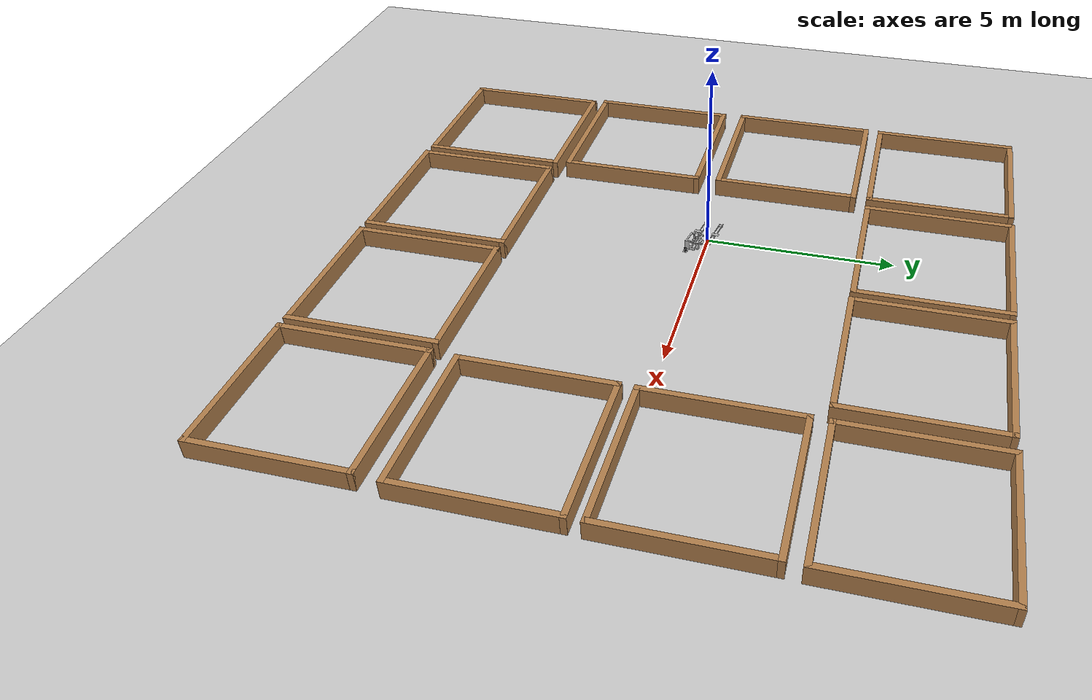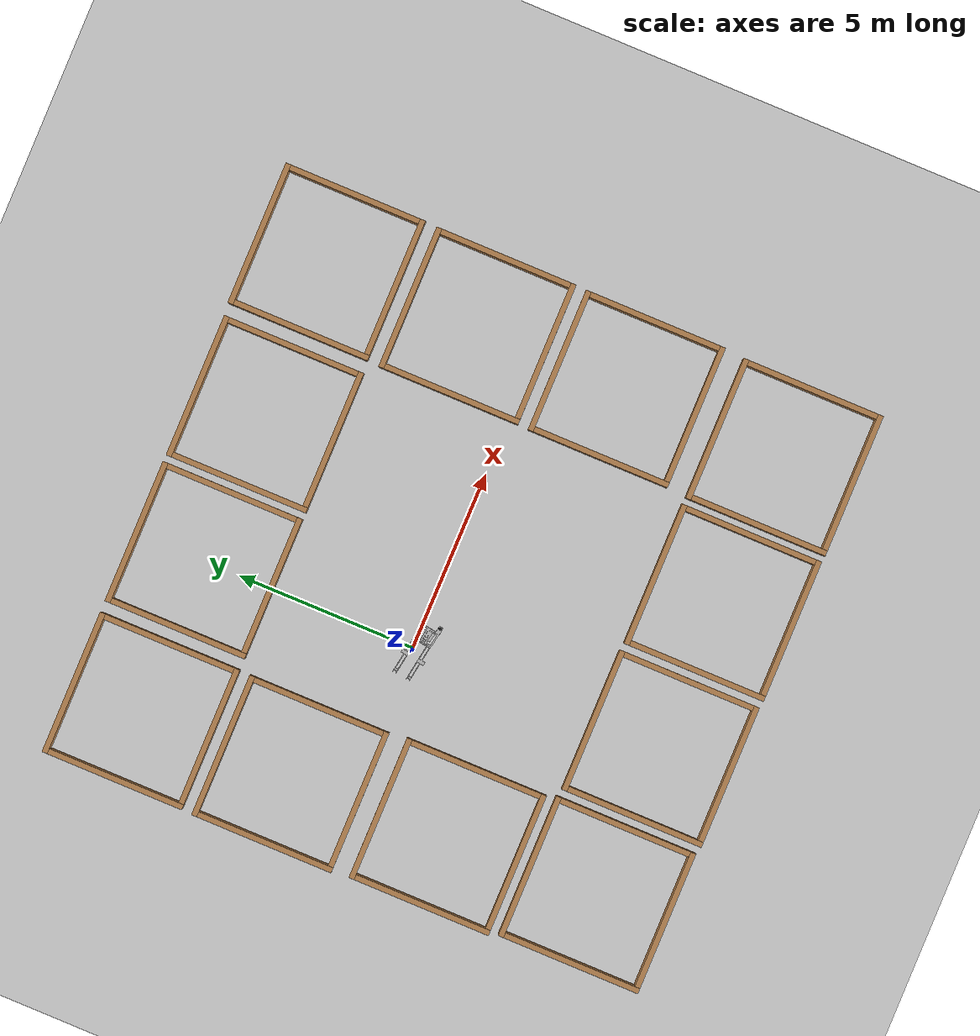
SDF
<sdf version="1.7">
 <world name="default">
  <light name="sun" type="directional">
   <pose>0 0 10 0 -0 0</pose>
   <diffuse>0.8 0.8 0.8 1</diffuse>
   <specular>0.2 0.2 0.2 1</specular>
   <attenuation>
    <range>1000</range>
    <constant>0.9</constant>
    <linear>0.01</linear>
    <quadratic>0.001</quadratic>
   </attenuation>
   <direction>-0.5 0.1 -0.9</direction>
   <spot><inner_angle>0</inner_angle><outer_angle>0</outer_angle><falloff>0</falloff></spot>
  </light>
  <model name="ground_plane">
   <static>1</static>
   <link name="link">
    <collision name="collision">
     <geometry><plane><normal>0 0 1</normal><size>100 100</size></plane></geometry>
     <surface><friction><ode><mu>100</mu><mu2>50</mu2></ode></friction></surface>
    </collision>
    <visual name="visual">
     <cast_shadows>0</cast_shadows>
     <geometry><plane><normal>0 0 1</normal><size>100 100</size></plane></geometry>
     <material>
      <script><uri>file://media/materials/scripts/gazebo.material</uri><name>Gazebo/Grey</name></script>
     </material>
    </visual>
   </link>
  </model>
  <gravity>0 0 -9.8</gravity>
  <magnetic_field>6e-06 2.3e-05 -4.2e-05</magnetic_field>
  <atmosphere type="adiabatic"/>
  <physics type="ode">
   <max_step_size>0.001</max_step_size>
   <real_time_factor>1</real_time_factor>
   <real_time_update_rate>1000</real_time_update_rate>
  </physics>
  <scene><ambient>0.4 0.4 0.4 1</ambient><background>0.7 0.7 0.7 1</background><shadows>1</shadows></scene>
  <spherical_coordinates>
   <surface_model>EARTH_WGS84</surface_model>
   <latitude_deg>0</latitude_deg>
   <longitude_deg>0</longitude_deg>
   <elevation>0</elevation>
   <heading_deg>0</heading_deg>
  </spherical_coordinates>
  <model name="gearfork_bot">
   <link name="base_footprint">
    <inertial>
     <pose>0.364933 -0.015221 0.223171 0 -0 0</pose>
     <mass>7.22673</mass>
     <inertia>
      <ixx>0.2612</ixx>
      <ixy>0.061618</ixy>
      <ixz>-0.177165</ixz>
      <iyy>0.994792</iyy>
      <iyz>-0.00749396</iyz>
      <izz>1.07132</izz>
     </inertia>
    </inertial>
    <collision name="base_footprint_collision">
     <geometry>
      <mesh>
       <scale>1 1 1</scale>
       <uri>/home/avinaash/noetic_ws/src/gearfork_bot/meshes/base_footprint.STL</uri>
      </mesh>
     </geometry>
    </collision>
    <collision name="base_footprint_fixed_joint_lump__base_link_collision_1">
     <pose>0 0 0.035 0 -0 0</pose>
     <geometry>
      <mesh><scale>1 1 1</scale><uri>/home/avinaash/noetic_ws/src/gearfork_bot/meshes/base_link.STL</uri></mesh>
     </geometry>
    </collision>
    <collision name="base_footprint_fixed_joint_lump__laser_link_collision_2">
     <pose>0.93 -0.22 0.181 0 -0 0</pose>
     <geometry>
      <mesh><scale>1 1 1</scale><uri>/home/avinaash/noetic_ws/src/gearfork_bot/meshes/laser_link.STL</uri></mesh>
     </geometry>
    </collision>
    <visual name="base_footprint_visual">
     <geometry>
      <mesh>
       <scale>1 1 1</scale>
       <uri>/home/avinaash/noetic_ws/src/gearfork_bot/meshes/base_footprint.STL</uri>
      </mesh>
     </geometry>
    </visual>
    <visual name="base_footprint_fixed_joint_lump__base_link_visual_1">
     <pose>0 0 0.035 0 -0 0</pose>
     <geometry>
      <mesh><scale>1 1 1</scale><uri>/home/avinaash/noetic_ws/src/gearfork_bot/meshes/base_link.STL</uri></mesh>
     </geometry>
    </visual>
    <visual name="base_footprint_fixed_joint_lump__laser_link_visual_2">
     <pose>0.93 -0.22 0.181 0 -0 0</pose>
     <geometry>
      <mesh><scale>1 1 1</scale><uri>/home/avinaash/noetic_ws/src/gearfork_bot/meshes/laser_link.STL</uri></mesh>
     </geometry>
     <material>
      <script><name>Gazebo/FlatBlack</name><uri>file://media/materials/scripts/gazebo.material</uri></script>
     </material>
    </visual>
    <sensor name="lds_lfcd_sensor" type="ray">
     <visualize>1</visualize>
     <update_rate>5</update_rate>
     <ray>
      <scan>
       <horizontal>
        <samples>760</samples>
        <resolution>1</resolution>
        <min_angle>-2.2</min_angle>
        <max_angle>1.57</max_angle>
       </horizontal>
       <vertical><samples>1</samples><min_angle>0</min_angle><max_angle>0</max_angle></vertical>
      </scan>
      <range><min>0.12</min><max>3.5</max><resolution>0.015</resolution></range>
      <noise><type>gaussian</type><mean>0</mean><stddev>0.01</stddev></noise>
     </ray>
     <plugin name="gazebo_ros_lds_lfcd_controller" filename="libgazebo_ros_laser.so">
      <topicName>/scan</topicName>
      <frameName>laser_link</frameName>
      <robotNamespace>/</robotNamespace>
     </plugin>
     <pose>0.93 -0.22 0.181 0 -0 0</pose>
    </sensor>
   </link>
   <joint name="lroller_joint" type="revolute">
    <pose relative_to="base_footprint">-0.6 0.17 0.045 0 -0 0</pose>
    <parent>base_footprint</parent>
    <child>lroller_link</child>
    <axis>
     <xyz>0 1 0</xyz>
     <limit><lower>-1e+16</lower><upper>1e+16</upper></limit>
     <dynamics>
      <damping>0</damping>
      <friction>0.1</friction>
      <spring_reference>0</spring_reference>
      <spring_stiffness>0</spring_stiffness>
     </dynamics>
    </axis>
   </joint>
   <link name="lroller_link">
    <pose relative_to="lroller_joint">0 0 0 0 -0 0</pose>
    <inertial>
     <pose>0 0.045 0 0 -0 0</pose>
     <mass>0.31285</mass>
     <inertia>
      <ixx>0.000307325</ixx>
      <ixy>8.78477e-20</ixy>
      <ixz>-2.3574e-20</ixz>
      <iyy>0.000204893</iyy>
      <iyz>2.69663e-19</iyz>
      <izz>0.000307325</izz>
     </inertia>
    </inertial>
    <collision name="lroller_link_collision">
     <geometry>
      <mesh><scale>1 1 1</scale><uri>/home/avinaash/noetic_ws/src/gearfork_bot/meshes/lroller_link.STL</uri></mesh>
     </geometry>
    </collision>
    <visual name="lroller_link_visual">
     <geometry>
      <mesh><scale>1 1 1</scale><uri>/home/avinaash/noetic_ws/src/gearfork_bot/meshes/lroller_link.STL</uri></mesh>
     </geometry>
    </visual>
   </link>
   <joint name="motor_joint" type="revolute">
    <pose relative_to="base_footprint">0.6 0 0.322 0 -0 0</pose>
    <parent>base_footprint</parent>
    <child>motor_link</child>
    <axis>
     <xyz>0 0 -1</xyz>
     <limit><lower>-0.88</lower><upper>0.88</upper><effort>5</effort><velocity>1</velocity></limit>
     <dynamics><spring_reference>0</spring_reference><spring_stiffness>0</spring_stiffness></dynamics>
    </axis>
   </joint>
   <link name="motor_link">
    <pose relative_to="motor_joint">0 0 0 0 -0 0</pose>
    <inertial>
     <pose>0.030545 -0.051619 -0.152664 0 -0 0</pose>
     <mass>3.6295</mass>
     <inertia>
      <ixx>0.0208732</ixx>
      <ixy>0.00122763</ixy>
      <ixz>8.16486e-06</ixz>
      <iyy>0.0180104</iyy>
      <iyz>-0.0033588</iyz>
      <izz>0.024987</izz>
     </inertia>
    </inertial>
    <collision name="motor_link_collision">
     <geometry>
      <mesh><scale>1 1 1</scale><uri>/home/avinaash/noetic_ws/src/gearfork_bot/meshes/motor_link.STL</uri></mesh>
     </geometry>
    </collision>
    <visual name="motor_link_visual">
     <geometry>
      <mesh><scale>1 1 1</scale><uri>/home/avinaash/noetic_ws/src/gearfork_bot/meshes/motor_link.STL</uri></mesh>
     </geometry>
    </visual>
   </link>
   <joint name="wheel_joint" type="revolute">
    <pose relative_to="motor_link">0.004014 0.033026 -0.247 0 -0 0</pose>
    <parent>motor_link</parent>
    <child>wheel_link</child>
    <axis>
     <xyz>0.006265 0.99998 0</xyz>
     <limit><lower>-1e+16</lower><upper>1e+16</upper></limit>
     <dynamics><spring_reference>0</spring_reference><spring_stiffness>0</spring_stiffness></dynamics>
    </axis>
   </joint>
   <link name="wheel_link">
    <pose relative_to="wheel_joint">0 0 0 0 -0 0</pose>
    <inertial>
     <pose>0.000172 -0.02745 0 0 -0 0</pose>
     <mass>0.919701</mass>
     <inertia>
      <ixx>0.00158997</ixx>
      <ixy>-5.62419e-06</ixy>
      <ixz>-6.63957e-20</ixz>
      <iyy>0.0024877</iyy>
      <iyz>1.16271e-19</iyz>
      <izz>0.00158993</izz>
     </inertia>
    </inertial>
    <collision name="wheel_link_collision">
     <geometry>
      <mesh><scale>1 1 1</scale><uri>/home/avinaash/noetic_ws/src/gearfork_bot/meshes/wheel_link.STL</uri></mesh>
     </geometry>
    </collision>
    <visual name="wheel_link_visual">
     <geometry>
      <mesh><scale>1 1 1</scale><uri>/home/avinaash/noetic_ws/src/gearfork_bot/meshes/wheel_link.STL</uri></mesh>
     </geometry>
    </visual>
   </link>
   <joint name="rroller_joint" type="revolute">
    <pose relative_to="base_footprint">-0.6 -0.17 0.045 0 -0 0</pose>
    <parent>base_footprint</parent>
    <child>rroller_link</child>
    <axis>
     <xyz>0 1 0</xyz>
     <limit><lower>-1e+16</lower><upper>1e+16</upper></limit>
     <dynamics>
      <damping>0</damping>
      <friction>0.1</friction>
      <spring_reference>0</spring_reference>
      <spring_stiffness>0</spring_stiffness>
     </dynamics>
    </axis>
   </joint>
   <link name="rroller_link">
    <pose relative_to="rroller_joint">0 0 0 0 -0 0</pose>
    <inertial>
     <pose>0 -0.045 0 0 -0 0</pose>
     <mass>0.31285</mass>
     <inertia>
      <ixx>0.000307325</ixx>
      <ixy>3.35272e-19</ixy>
      <ixz>-8.68654e-21</ixz>
      <iyy>0.000204893</iyy>
      <iyz>4.43634e-20</iyz>
      <izz>0.000307325</izz>
     </inertia>
    </inertial>
    <collision name="rroller_link_collision">
     <geometry>
      <mesh><scale>1 1 1</scale><uri>/home/avinaash/noetic_ws/src/gearfork_bot/meshes/rroller_link.STL</uri></mesh>
     </geometry>
    </collision>
    <visual name="rroller_link_visual">
     <geometry>
      <mesh><scale>1 1 1</scale><uri>/home/avinaash/noetic_ws/src/gearfork_bot/meshes/rroller_link.STL</uri></mesh>
     </geometry>
    </visual>
   </link>
   <joint name="steering_joint" type="revolute">
    <pose relative_to="base_footprint">0.74937 0 0.267 0 -0 0</pose>
    <parent>base_footprint</parent>
    <child>steering_link</child>
    <axis>
     <xyz>0 0 1</xyz>
     <limit><lower>-1e+16</lower><upper>1e+16</upper></limit>
     <dynamics><spring_reference>0</spring_reference><spring_stiffness>0</spring_stiffness></dynamics>
    </axis>
   </joint>
   <link name="steering_link">
    <pose relative_to="steering_joint">0 0 0 0 -0 0</pose>
    <inertial>
     <pose>0 0 0.070853 0 -0 0</pose>
     <mass>0.100938</mass>
     <inertia>
      <ixx>0.000449053</ixx>
      <ixy>-1.89272e-20</ixy>
      <ixz>6.21936e-20</ixz>
      <iyy>0.000449053</iyy>
      <iyz>-1.60008e-19</iyz>
      <izz>1.73496e-05</izz>
     </inertia>
    </inertial>
    <collision name="steering_link_collision">
     <geometry>
      <mesh><scale>1 1 1</scale><uri>/home/avinaash/noetic_ws/src/gearfork_bot/meshes/steering_link.STL</uri></mesh>
     </geometry>
    </collision>
    <visual name="steering_link_visual">
     <geometry>
      <mesh><scale>1 1 1</scale><uri>/home/avinaash/noetic_ws/src/gearfork_bot/meshes/steering_link.STL</uri></mesh>
     </geometry>
    </visual>
   </link>
   <plugin name="gazebo_ros_control" filename="libgazebo_ros_control.so">
    <robotNamespace>/gearfork_bot</robotNamespace>
   </plugin>
   <plugin name="differential_drive_controller" filename="libgazebo_ros_diff_drive.so">
    <updateRate>10</updateRate>
    <leftJoint>wheel_joint</leftJoint>
    <rightJoint>wheel_joint</rightJoint>
    <wheelSeparation>0.5380</wheelSeparation>
    <wheelDiameter>0.2410</wheelDiameter>
    <wheelAcceleration>1.0</wheelAcceleration>
    <wheelTorque>10</wheelTorque>
    <commandTopic>/gearfork_bot/cmd_vel</commandTopic>
    <odometryTopic>odom</odometryTopic>
    <odometryFrame>odom</odometryFrame>
    <robotBaseFrame>base_link</robotBaseFrame>
    <odometrySource>1</odometrySource>
    <publishWheelTF>0</publishWheelTF>
    <publishOdom>1</publishOdom>
    <publishWheelJointState>0</publishWheelJointState>
    <legacyMode>0</legacyMode>
    <robotNamespace>/</robotNamespace>
   </plugin>
   <frame name="laser_joint" attached_to="base_link"><pose>0.93 -0.22 0.146 0 -0 0</pose></frame>
   <frame name="laser_link" attached_to="laser_joint"/>
   <frame name="base_joint" attached_to="base_footprint"><pose>0 0 0.035 0 -0 0</pose></frame>
   <frame name="base_link" attached_to="base_joint"/>
   <pose>-0.13187 -0.091387 3.7e-05 0.037455 -0.000928 -0.162586</pose>
  </model>
  <model name="turtlebot3_square">
   <pose>0.029475 6.01089 0 0 -0 0</pose>
   <link name="Wall_0">
    <collision name="Wall_0_Collision">
     <geometry><box><size>4 0.15 0.5</size></box></geometry>
     <pose>0 0 0.25 0 -0 0</pose>
    </collision>
    <visual name="Wall_0_Visual">
     <pose>0 0 0.25 0 -0 0</pose>
     <geometry><box><size>4 0.15 0.5</size></box></geometry>
     <material>
      <script><uri>file://media/materials/scripts/gazebo.material</uri><name>Gazebo/Wood</name></script>
      <ambient>1 1 1 1</ambient>
     </material>
    </visual>
    <pose>0 1.925 0 0 -0 0</pose>
   </link>
   <link name="Wall_2">
    <collision name="Wall_2_Collision">
     <geometry><box><size>4 0.15 0.5</size></box></geometry>
     <pose>0 0 0.25 0 -0 0</pose>
    </collision>
    <visual name="Wall_2_Visual">
     <pose>0 0 0.25 0 -0 0</pose>
     <geometry><box><size>4 0.15 0.5</size></box></geometry>
     <material>
      <script><uri>file://media/materials/scripts/gazebo.material</uri><name>Gazebo/Wood</name></script>
      <ambient>1 1 1 1</ambient>
     </material>
    </visual>
    <pose>-1.925 0 0 0 0 -1.5708</pose>
   </link>
   <link name="Wall_3">
    <collision name="Wall_3_Collision">
     <geometry><box><size>4 0.15 0.5</size></box></geometry>
     <pose>0 0 0.25 0 -0 0</pose>
    </collision>
    <visual name="Wall_3_Visual">
     <pose>0 0 0.25 0 -0 0</pose>
     <geometry><box><size>4 0.15 0.5</size></box></geometry>
     <material>
      <script><uri>file://media/materials/scripts/gazebo.material</uri><name>Gazebo/Wood</name></script>
      <ambient>1 1 1 1</ambient>
     </material>
    </visual>
    <pose>0 -1.925 0 0 -0 0</pose>
   </link>
   <link name="Wall_4">
    <collision name="Wall_4_Collision">
     <geometry><box><size>4 0.15 0.5</size></box></geometry>
     <pose>0 0 0.25 0 -0 0</pose>
    </collision>
    <visual name="Wall_4_Visual">
     <pose>0 0 0.25 0 -0 0</pose>
     <geometry><box><size>4 0.15 0.5</size></box></geometry>
     <material>
      <script><uri>file://media/materials/scripts/gazebo.material</uri><name>Gazebo/Wood</name></script>
      <ambient>1 1 1 1</ambient>
     </material>
    </visual>
    <pose>1.925 0 0 0 -0 1.5708</pose>
   </link>
   <static>1</static>
  </model>
  <model name="turtlebot3_square_0">
   <pose>0.084812 -7.05587 0 0 -0 0</pose>
   <link name="Wall_0">
    <collision name="Wall_0_Collision">
     <geometry><box><size>4 0.15 0.5</size></box></geometry>
     <pose>0 0 0.25 0 -0 0</pose>
    </collision>
    <visual name="Wall_0_Visual">
     <pose>0 0 0.25 0 -0 0</pose>
     <geometry><box><size>4 0.15 0.5</size></box></geometry>
     <material>
      <script><uri>file://media/materials/scripts/gazebo.material</uri><name>Gazebo/Wood</name></script>
      <ambient>1 1 1 1</ambient>
     </material>
    </visual>
    <pose>0 1.925 0 0 -0 0</pose>
   </link>
   <link name="Wall_2">
    <collision name="Wall_2_Collision">
     <geometry><box><size>4 0.15 0.5</size></box></geometry>
     <pose>0 0 0.25 0 -0 0</pose>
    </collision>
    <visual name="Wall_2_Visual">
     <pose>0 0 0.25 0 -0 0</pose>
     <geometry><box><size>4 0.15 0.5</size></box></geometry>
     <material>
      <script><uri>file://media/materials/scripts/gazebo.material</uri><name>Gazebo/Wood</name></script>
      <ambient>1 1 1 1</ambient>
     </material>
    </visual>
    <pose>-1.925 0 0 0 0 -1.5708</pose>
   </link>
   <link name="Wall_3">
    <collision name="Wall_3_Collision">
     <geometry><box><size>4 0.15 0.5</size></box></geometry>
     <pose>0 0 0.25 0 -0 0</pose>
    </collision>
    <visual name="Wall_3_Visual">
     <pose>0 0 0.25 0 -0 0</pose>
     <geometry><box><size>4 0.15 0.5</size></box></geometry>
     <material>
      <script><uri>file://media/materials/scripts/gazebo.material</uri><name>Gazebo/Wood</name></script>
      <ambient>1 1 1 1</ambient>
     </material>
    </visual>
    <pose>0 -1.925 0 0 -0 0</pose>
   </link>
   <link name="Wall_4">
    <collision name="Wall_4_Collision">
     <geometry><box><size>4 0.15 0.5</size></box></geometry>
     <pose>0 0 0.25 0 -0 0</pose>
    </collision>
    <visual name="Wall_4_Visual">
     <pose>0 0 0.25 0 -0 0</pose>
     <geometry><box><size>4 0.15 0.5</size></box></geometry>
     <material>
      <script><uri>file://media/materials/scripts/gazebo.material</uri><name>Gazebo/Wood</name></script>
      <ambient>1 1 1 1</ambient>
     </material>
    </visual>
    <pose>1.925 0 0 0 -0 1.5708</pose>
   </link>
   <static>1</static>
  </model>
  <model name="turtlebot3_square_1">
   <pose>4.21174 5.99983 0 0 -0 0</pose>
   <link name="Wall_0">
    <collision name="Wall_0_Collision">
     <geometry><box><size>4 0.15 0.5</size></box></geometry>
     <pose>0 0 0.25 0 -0 0</pose>
    </collision>
    <visual name="Wall_0_Visual">
     <pose>0 0 0.25 0 -0 0</pose>
     <geometry><box><size>4 0.15 0.5</size></box></geometry>
     <material>
      <script><uri>file://media/materials/scripts/gazebo.material</uri><name>Gazebo/Wood</name></script>
      <ambient>1 1 1 1</ambient>
     </material>
    </visual>
    <pose>0 1.925 0 0 -0 0</pose>
   </link>
   <link name="Wall_2">
    <collision name="Wall_2_Collision">
     <geometry><box><size>4 0.15 0.5</size></box></geometry>
     <pose>0 0 0.25 0 -0 0</pose>
    </collision>
    <visual name="Wall_2_Visual">
     <pose>0 0 0.25 0 -0 0</pose>
     <geometry><box><size>4 0.15 0.5</size></box></geometry>
     <material>
      <script><uri>file://media/materials/scripts/gazebo.material</uri><name>Gazebo/Wood</name></script>
      <ambient>1 1 1 1</ambient>
     </material>
    </visual>
    <pose>-1.925 0 0 0 0 -1.5708</pose>
   </link>
   <link name="Wall_3">
    <collision name="Wall_3_Collision">
     <geometry><box><size>4 0.15 0.5</size></box></geometry>
     <pose>0 0 0.25 0 -0 0</pose>
    </collision>
    <visual name="Wall_3_Visual">
     <pose>0 0 0.25 0 -0 0</pose>
     <geometry><box><size>4 0.15 0.5</size></box></geometry>
     <material>
      <script><uri>file://media/materials/scripts/gazebo.material</uri><name>Gazebo/Wood</name></script>
      <ambient>1 1 1 1</ambient>
     </material>
    </visual>
    <pose>0 -1.925 0 0 -0 0</pose>
   </link>
   <link name="Wall_4">
    <collision name="Wall_4_Collision">
     <geometry><box><size>4 0.15 0.5</size></box></geometry>
     <pose>0 0 0.25 0 -0 0</pose>
    </collision>
    <visual name="Wall_4_Visual">
     <pose>0 0 0.25 0 -0 0</pose>
     <geometry><box><size>4 0.15 0.5</size></box></geometry>
     <material>
      <script><uri>file://media/materials/scripts/gazebo.material</uri><name>Gazebo/Wood</name></script>
      <ambient>1 1 1 1</ambient>
     </material>
    </visual>
    <pose>1.925 0 0 0 -0 1.5708</pose>
   </link>
   <static>1</static>
  </model>
  <model name="turtlebot3_square_2">
   <pose>4.27813 -7.08907 0 0 -0 0</pose>
   <link name="Wall_0">
    <collision name="Wall_0_Collision">
     <geometry><box><size>4 0.15 0.5</size></box></geometry>
     <pose>0 0 0.25 0 -0 0</pose>
    </collision>
    <visual name="Wall_0_Visual">
     <pose>0 0 0.25 0 -0 0</pose>
     <geometry><box><size>4 0.15 0.5</size></box></geometry>
     <material>
      <script><uri>file://media/materials/scripts/gazebo.material</uri><name>Gazebo/Wood</name></script>
      <ambient>1 1 1 1</ambient>
     </material>
    </visual>
    <pose>0 1.925 0 0 -0 0</pose>
   </link>
   <link name="Wall_2">
    <collision name="Wall_2_Collision">
     <geometry><box><size>4 0.15 0.5</size></box></geometry>
     <pose>0 0 0.25 0 -0 0</pose>
    </collision>
    <visual name="Wall_2_Visual">
     <pose>0 0 0.25 0 -0 0</pose>
     <geometry><box><size>4 0.15 0.5</size></box></geometry>
     <material>
      <script><uri>file://media/materials/scripts/gazebo.material</uri><name>Gazebo/Wood</name></script>
      <ambient>1 1 1 1</ambient>
     </material>
    </visual>
    <pose>-1.925 0 0 0 0 -1.5708</pose>
   </link>
   <link name="Wall_3">
    <collision name="Wall_3_Collision">
     <geometry><box><size>4 0.15 0.5</size></box></geometry>
     <pose>0 0 0.25 0 -0 0</pose>
    </collision>
    <visual name="Wall_3_Visual">
     <pose>0 0 0.25 0 -0 0</pose>
     <geometry><box><size>4 0.15 0.5</size></box></geometry>
     <material>
      <script><uri>file://media/materials/scripts/gazebo.material</uri><name>Gazebo/Wood</name></script>
      <ambient>1 1 1 1</ambient>
     </material>
    </visual>
    <pose>0 -1.925 0 0 -0 0</pose>
   </link>
   <link name="Wall_4">
    <collision name="Wall_4_Collision">
     <geometry><box><size>4 0.15 0.5</size></box></geometry>
     <pose>0 0 0.25 0 -0 0</pose>
    </collision>
    <visual name="Wall_4_Visual">
     <pose>0 0 0.25 0 -0 0</pose>
     <geometry><box><size>4 0.15 0.5</size></box></geometry>
     <material>
      <script><uri>file://media/materials/scripts/gazebo.material</uri><name>Gazebo/Wood</name></script>
      <ambient>1 1 1 1</ambient>
     </material>
    </visual>
    <pose>1.925 0 0 0 -0 1.5708</pose>
   </link>
   <static>1</static>
  </model>
  <model name="turtlebot3_square_3">
   <pose>8.4555 -7.11386 0 0 -0 0</pose>
   <link name="Wall_0">
    <collision name="Wall_0_Collision">
     <geometry><box><size>4 0.15 0.5</size></box></geometry>
     <pose>0 0 0.25 0 -0 0</pose>
    </collision>
    <visual name="Wall_0_Visual">
     <pose>0 0 0.25 0 -0 0</pose>
     <geometry><box><size>4 0.15 0.5</size></box></geometry>
     <material>
      <script><uri>file://media/materials/scripts/gazebo.material</uri><name>Gazebo/Wood</name></script>
      <ambient>1 1 1 1</ambient>
     </material>
    </visual>
    <pose>0 1.925 0 0 -0 0</pose>
   </link>
   <link name="Wall_2">
    <collision name="Wall_2_Collision">
     <geometry><box><size>4 0.15 0.5</size></box></geometry>
     <pose>0 0 0.25 0 -0 0</pose>
    </collision>
    <visual name="Wall_2_Visual">
     <pose>0 0 0.25 0 -0 0</pose>
     <geometry><box><size>4 0.15 0.5</size></box></geometry>
     <material>
      <script><uri>file://media/materials/scripts/gazebo.material</uri><name>Gazebo/Wood</name></script>
      <ambient>1 1 1 1</ambient>
     </material>
    </visual>
    <pose>-1.925 0 0 0 0 -1.5708</pose>
   </link>
   <link name="Wall_3">
    <collision name="Wall_3_Collision">
     <geometry><box><size>4 0.15 0.5</size></box></geometry>
     <pose>0 0 0.25 0 -0 0</pose>
    </collision>
    <visual name="Wall_3_Visual">
     <pose>0 0 0.25 0 -0 0</pose>
     <geometry><box><size>4 0.15 0.5</size></box></geometry>
     <material>
      <script><uri>file://media/materials/scripts/gazebo.material</uri><name>Gazebo/Wood</name></script>
      <ambient>1 1 1 1</ambient>
     </material>
    </visual>
    <pose>0 -1.925 0 0 -0 0</pose>
   </link>
   <link name="Wall_4">
    <collision name="Wall_4_Collision">
     <geometry><box><size>4 0.15 0.5</size></box></geometry>
     <pose>0 0 0.25 0 -0 0</pose>
    </collision>
    <visual name="Wall_4_Visual">
     <pose>0 0 0.25 0 -0 0</pose>
     <geometry><box><size>4 0.15 0.5</size></box></geometry>
     <material>
      <script><uri>file://media/materials/scripts/gazebo.material</uri><name>Gazebo/Wood</name></script>
      <ambient>1 1 1 1</ambient>
     </material>
    </visual>
    <pose>1.925 0 0 0 -0 1.5708</pose>
   </link>
   <static>1</static>
  </model>
  <model name="turtlebot3_square_4">
   <pose>8.55544 6.04772 0 0 -0 0</pose>
   <link name="Wall_0">
    <collision name="Wall_0_Collision">
     <geometry><box><size>4 0.15 0.5</size></box></geometry>
     <pose>0 0 0.25 0 -0 0</pose>
    </collision>
    <visual name="Wall_0_Visual">
     <pose>0 0 0.25 0 -0 0</pose>
     <geometry><box><size>4 0.15 0.5</size></box></geometry>
     <material>
      <script><uri>file://media/materials/scripts/gazebo.material</uri><name>Gazebo/Wood</name></script>
      <ambient>1 1 1 1</ambient>
     </material>
    </visual>
    <pose>0 1.925 0 0 -0 0</pose>
   </link>
   <link name="Wall_2">
    <collision name="Wall_2_Collision">
     <geometry><box><size>4 0.15 0.5</size></box></geometry>
     <pose>0 0 0.25 0 -0 0</pose>
    </collision>
    <visual name="Wall_2_Visual">
     <pose>0 0 0.25 0 -0 0</pose>
     <geometry><box><size>4 0.15 0.5</size></box></geometry>
     <material>
      <script><uri>file://media/materials/scripts/gazebo.material</uri><name>Gazebo/Wood</name></script>
      <ambient>1 1 1 1</ambient>
     </material>
    </visual>
    <pose>-1.925 0 0 0 0 -1.5708</pose>
   </link>
   <link name="Wall_3">
    <collision name="Wall_3_Collision">
     <geometry><box><size>4 0.15 0.5</size></box></geometry>
     <pose>0 0 0.25 0 -0 0</pose>
    </collision>
    <visual name="Wall_3_Visual">
     <pose>0 0 0.25 0 -0 0</pose>
     <geometry><box><size>4 0.15 0.5</size></box></geometry>
     <material>
      <script><uri>file://media/materials/scripts/gazebo.material</uri><name>Gazebo/Wood</name></script>
      <ambient>1 1 1 1</ambient>
     </material>
    </visual>
    <pose>0 -1.925 0 0 -0 0</pose>
   </link>
   <link name="Wall_4">
    <collision name="Wall_4_Collision">
     <geometry><box><size>4 0.15 0.5</size></box></geometry>
     <pose>0 0 0.25 0 -0 0</pose>
    </collision>
    <visual name="Wall_4_Visual">
     <pose>0 0 0.25 0 -0 0</pose>
     <geometry><box><size>4 0.15 0.5</size></box></geometry>
     <material>
      <script><uri>file://media/materials/scripts/gazebo.material</uri><name>Gazebo/Wood</name></script>
      <ambient>1 1 1 1</ambient>
     </material>
    </visual>
    <pose>1.925 0 0 0 -0 1.5708</pose>
   </link>
   <static>1</static>
  </model>
  <model name="turtlebot3_square_5">
   <pose>-4.28557 6.0077 0 0 -0 0</pose>
   <link name="Wall_0">
    <collision name="Wall_0_Collision">
     <geometry><box><size>4 0.15 0.5</size></box></geometry>
     <pose>0 0 0.25 0 -0 0</pose>
    </collision>
    <visual name="Wall_0_Visual">
     <pose>0 0 0.25 0 -0 0</pose>
     <geometry><box><size>4 0.15 0.5</size></box></geometry>
     <material>
      <script><uri>file://media/materials/scripts/gazebo.material</uri><name>Gazebo/Wood</name></script>
      <ambient>1 1 1 1</ambient>
     </material>
    </visual>
    <pose>0 1.925 0 0 -0 0</pose>
   </link>
   <link name="Wall_2">
    <collision name="Wall_2_Collision">
     <geometry><box><size>4 0.15 0.5</size></box></geometry>
     <pose>0 0 0.25 0 -0 0</pose>
    </collision>
    <visual name="Wall_2_Visual">
     <pose>0 0 0.25 0 -0 0</pose>
     <geometry><box><size>4 0.15 0.5</size></box></geometry>
     <material>
      <script><uri>file://media/materials/scripts/gazebo.material</uri><name>Gazebo/Wood</name></script>
      <ambient>1 1 1 1</ambient>
     </material>
    </visual>
    <pose>-1.925 0 0 0 0 -1.5708</pose>
   </link>
   <link name="Wall_3">
    <collision name="Wall_3_Collision">
     <geometry><box><size>4 0.15 0.5</size></box></geometry>
     <pose>0 0 0.25 0 -0 0</pose>
    </collision>
    <visual name="Wall_3_Visual">
     <pose>0 0 0.25 0 -0 0</pose>
     <geometry><box><size>4 0.15 0.5</size></box></geometry>
     <material>
      <script><uri>file://media/materials/scripts/gazebo.material</uri><name>Gazebo/Wood</name></script>
      <ambient>1 1 1 1</ambient>
     </material>
    </visual>
    <pose>0 -1.925 0 0 -0 0</pose>
   </link>
   <link name="Wall_4">
    <collision name="Wall_4_Collision">
     <geometry><box><size>4 0.15 0.5</size></box></geometry>
     <pose>0 0 0.25 0 -0 0</pose>
    </collision>
    <visual name="Wall_4_Visual">
     <pose>0 0 0.25 0 -0 0</pose>
     <geometry><box><size>4 0.15 0.5</size></box></geometry>
     <material>
      <script><uri>file://media/materials/scripts/gazebo.material</uri><name>Gazebo/Wood</name></script>
      <ambient>1 1 1 1</ambient>
     </material>
    </visual>
    <pose>1.925 0 0 0 -0 1.5708</pose>
   </link>
   <static>1</static>
  </model>
  <model name="turtlebot3_square_6">
   <pose>-4.12515 -6.99359 0 0 -0 0</pose>
   <link name="Wall_0">
    <collision name="Wall_0_Collision">
     <geometry><box><size>4 0.15 0.5</size></box></geometry>
     <pose>0 0 0.25 0 -0 0</pose>
    </collision>
    <visual name="Wall_0_Visual">
     <pose>0 0 0.25 0 -0 0</pose>
     <geometry><box><size>4 0.15 0.5</size></box></geometry>
     <material>
      <script><uri>file://media/materials/scripts/gazebo.material</uri><name>Gazebo/Wood</name></script>
      <ambient>1 1 1 1</ambient>
     </material>
    </visual>
    <pose>0 1.925 0 0 -0 0</pose>
   </link>
   <link name="Wall_2">
    <collision name="Wall_2_Collision">
     <geometry><box><size>4 0.15 0.5</size></box></geometry>
     <pose>0 0 0.25 0 -0 0</pose>
    </collision>
    <visual name="Wall_2_Visual">
     <pose>0 0 0.25 0 -0 0</pose>
     <geometry><box><size>4 0.15 0.5</size></box></geometry>
     <material>
      <script><uri>file://media/materials/scripts/gazebo.material</uri><name>Gazebo/Wood</name></script>
      <ambient>1 1 1 1</ambient>
     </material>
    </visual>
    <pose>-1.925 0 0 0 0 -1.5708</pose>
   </link>
   <link name="Wall_3">
    <collision name="Wall_3_Collision">
     <geometry><box><size>4 0.15 0.5</size></box></geometry>
     <pose>0 0 0.25 0 -0 0</pose>
    </collision>
    <visual name="Wall_3_Visual">
     <pose>0 0 0.25 0 -0 0</pose>
     <geometry><box><size>4 0.15 0.5</size></box></geometry>
     <material>
      <script><uri>file://media/materials/scripts/gazebo.material</uri><name>Gazebo/Wood</name></script>
      <ambient>1 1 1 1</ambient>
     </material>
    </visual>
    <pose>0 -1.925 0 0 -0 0</pose>
   </link>
   <link name="Wall_4">
    <collision name="Wall_4_Collision">
     <geometry><box><size>4 0.15 0.5</size></box></geometry>
     <pose>0 0 0.25 0 -0 0</pose>
    </collision>
    <visual name="Wall_4_Visual">
     <pose>0 0 0.25 0 -0 0</pose>
     <geometry><box><size>4 0.15 0.5</size></box></geometry>
     <material>
      <script><uri>file://media/materials/scripts/gazebo.material</uri><name>Gazebo/Wood</name></script>
      <ambient>1 1 1 1</ambient>
     </material>
    </visual>
    <pose>1.925 0 0 0 -0 1.5708</pose>
   </link>
   <static>1</static>
  </model>
  <model name="turtlebot3_square_7">
   <pose>-4.30183 1.71776 0 0 -0 0</pose>
   <link name="Wall_0">
    <collision name="Wall_0_Collision">
     <geometry><box><size>4 0.15 0.5</size></box></geometry>
     <pose>0 0 0.25 0 -0 0</pose>
    </collision>
    <visual name="Wall_0_Visual">
     <pose>0 0 0.25 0 -0 0</pose>
     <geometry><box><size>4 0.15 0.5</size></box></geometry>
     <material>
      <script><uri>file://media/materials/scripts/gazebo.material</uri><name>Gazebo/Wood</name></script>
      <ambient>1 1 1 1</ambient>
     </material>
    </visual>
    <pose>0 1.925 0 0 -0 0</pose>
   </link>
   <link name="Wall_2">
    <collision name="Wall_2_Collision">
     <geometry><box><size>4 0.15 0.5</size></box></geometry>
     <pose>0 0 0.25 0 -0 0</pose>
    </collision>
    <visual name="Wall_2_Visual">
     <pose>0 0 0.25 0 -0 0</pose>
     <geometry><box><size>4 0.15 0.5</size></box></geometry>
     <material>
      <script><uri>file://media/materials/scripts/gazebo.material</uri><name>Gazebo/Wood</name></script>
      <ambient>1 1 1 1</ambient>
     </material>
    </visual>
    <pose>-1.925 0 0 0 0 -1.5708</pose>
   </link>
   <link name="Wall_3">
    <collision name="Wall_3_Collision">
     <geometry><box><size>4 0.15 0.5</size></box></geometry>
     <pose>0 0 0.25 0 -0 0</pose>
    </collision>
    <visual name="Wall_3_Visual">
     <pose>0 0 0.25 0 -0 0</pose>
     <geometry><box><size>4 0.15 0.5</size></box></geometry>
     <material>
      <script><uri>file://media/materials/scripts/gazebo.material</uri><name>Gazebo/Wood</name></script>
      <ambient>1 1 1 1</ambient>
     </material>
    </visual>
    <pose>0 -1.925 0 0 -0 0</pose>
   </link>
   <link name="Wall_4">
    <collision name="Wall_4_Collision">
     <geometry><box><size>4 0.15 0.5</size></box></geometry>
     <pose>0 0 0.25 0 -0 0</pose>
    </collision>
    <visual name="Wall_4_Visual">
     <pose>0 0 0.25 0 -0 0</pose>
     <geometry><box><size>4 0.15 0.5</size></box></geometry>
     <material>
      <script><uri>file://media/materials/scripts/gazebo.material</uri><name>Gazebo/Wood</name></script>
      <ambient>1 1 1 1</ambient>
     </material>
    </visual>
    <pose>1.925 0 0 0 -0 1.5708</pose>
   </link>
   <static>1</static>
  </model>
  <model name="turtlebot3_square_8">
   <pose>-4.23054 -2.75863 0 0 -0 0</pose>
   <link name="Wall_0">
    <collision name="Wall_0_Collision">
     <geometry><box><size>4 0.15 0.5</size></box></geometry>
     <pose>0 0 0.25 0 -0 0</pose>
    </collision>
    <visual name="Wall_0_Visual">
     <pose>0 0 0.25 0 -0 0</pose>
     <geometry><box><size>4 0.15 0.5</size></box></geometry>
     <material>
      <script><uri>file://media/materials/scripts/gazebo.material</uri><name>Gazebo/Wood</name></script>
      <ambient>1 1 1 1</ambient>
     </material>
    </visual>
    <pose>0 1.925 0 0 -0 0</pose>
   </link>
   <link name="Wall_2">
    <collision name="Wall_2_Collision">
     <geometry><box><size>4 0.15 0.5</size></box></geometry>
     <pose>0 0 0.25 0 -0 0</pose>
    </collision>
    <visual name="Wall_2_Visual">
     <pose>0 0 0.25 0 -0 0</pose>
     <geometry><box><size>4 0.15 0.5</size></box></geometry>
     <material>
      <script><uri>file://media/materials/scripts/gazebo.material</uri><name>Gazebo/Wood</name></script>
      <ambient>1 1 1 1</ambient>
     </material>
    </visual>
    <pose>-1.925 0 0 0 0 -1.5708</pose>
   </link>
   <link name="Wall_3">
    <collision name="Wall_3_Collision">
     <geometry><box><size>4 0.15 0.5</size></box></geometry>
     <pose>0 0 0.25 0 -0 0</pose>
    </collision>
    <visual name="Wall_3_Visual">
     <pose>0 0 0.25 0 -0 0</pose>
     <geometry><box><size>4 0.15 0.5</size></box></geometry>
     <material>
      <script><uri>file://media/materials/scripts/gazebo.material</uri><name>Gazebo/Wood</name></script>
      <ambient>1 1 1 1</ambient>
     </material>
    </visual>
    <pose>0 -1.925 0 0 -0 0</pose>
   </link>
   <link name="Wall_4">
    <collision name="Wall_4_Collision">
     <geometry><box><size>4 0.15 0.5</size></box></geometry>
     <pose>0 0 0.25 0 -0 0</pose>
    </collision>
    <visual name="Wall_4_Visual">
     <pose>0 0 0.25 0 -0 0</pose>
     <geometry><box><size>4 0.15 0.5</size></box></geometry>
     <material>
      <script><uri>file://media/materials/scripts/gazebo.material</uri><name>Gazebo/Wood</name></script>
      <ambient>1 1 1 1</ambient>
     </material>
    </visual>
    <pose>1.925 0 0 0 -0 1.5708</pose>
   </link>
   <static>1</static>
  </model>
  <model name="turtlebot3_square_9">
   <pose>8.5309 1.71777 0 0 -0 0</pose>
   <link name="Wall_0">
    <collision name="Wall_0_Collision">
     <geometry><box><size>4 0.15 0.5</size></box></geometry>
     <pose>0 0 0.25 0 -0 0</pose>
    </collision>
    <visual name="Wall_0_Visual">
     <pose>0 0 0.25 0 -0 0</pose>
     <geometry><box><size>4 0.15 0.5</size></box></geometry>
     <material>
      <script><uri>file://media/materials/scripts/gazebo.material</uri><name>Gazebo/Wood</name></script>
      <ambient>1 1 1 1</ambient>
     </material>
    </visual>
    <pose>0 1.925 0 0 -0 0</pose>
   </link>
   <link name="Wall_2">
    <collision name="Wall_2_Collision">
     <geometry><box><size>4 0.15 0.5</size></box></geometry>
     <pose>0 0 0.25 0 -0 0</pose>
    </collision>
    <visual name="Wall_2_Visual">
     <pose>0 0 0.25 0 -0 0</pose>
     <geometry><box><size>4 0.15 0.5</size></box></geometry>
     <material>
      <script><uri>file://media/materials/scripts/gazebo.material</uri><name>Gazebo/Wood</name></script>
      <ambient>1 1 1 1</ambient>
     </material>
    </visual>
    <pose>-1.925 0 0 0 0 -1.5708</pose>
   </link>
   <link name="Wall_3">
    <collision name="Wall_3_Collision">
     <geometry><box><size>4 0.15 0.5</size></box></geometry>
     <pose>0 0 0.25 0 -0 0</pose>
    </collision>
    <visual name="Wall_3_Visual">
     <pose>0 0 0.25 0 -0 0</pose>
     <geometry><box><size>4 0.15 0.5</size></box></geometry>
     <material>
      <script><uri>file://media/materials/scripts/gazebo.material</uri><name>Gazebo/Wood</name></script>
      <ambient>1 1 1 1</ambient>
     </material>
    </visual>
    <pose>0 -1.925 0 0 -0 0</pose>
   </link>
   <link name="Wall_4">
    <collision name="Wall_4_Collision">
     <geometry><box><size>4 0.15 0.5</size></box></geometry>
     <pose>0 0 0.25 0 -0 0</pose>
    </collision>
    <visual name="Wall_4_Visual">
     <pose>0 0 0.25 0 -0 0</pose>
     <geometry><box><size>4 0.15 0.5</size></box></geometry>
     <material>
      <script><uri>file://media/materials/scripts/gazebo.material</uri><name>Gazebo/Wood</name></script>
      <ambient>1 1 1 1</ambient>
     </material>
    </visual>
    <pose>1.925 0 0 0 -0 1.5708</pose>
   </link>
   <static>1</static>
  </model>
  <model name="turtlebot3_square_10">
   <pose>8.51365 -2.56884 0 0 -0 0</pose>
   <link name="Wall_0">
    <collision name="Wall_0_Collision">
     <geometry><box><size>4 0.15 0.5</size></box></geometry>
     <pose>0 0 0.25 0 -0 0</pose>
    </collision>
    <visual name="Wall_0_Visual">
     <pose>0 0 0.25 0 -0 0</pose>
     <geometry><box><size>4 0.15 0.5</size></box></geometry>
     <material>
      <script><uri>file://media/materials/scripts/gazebo.material</uri><name>Gazebo/Wood</name></script>
      <ambient>1 1 1 1</ambient>
     </material>
    </visual>
    <pose>0 1.925 0 0 -0 0</pose>
   </link>
   <link name="Wall_2">
    <collision name="Wall_2_Collision">
     <geometry><box><size>4 0.15 0.5</size></box></geometry>
     <pose>0 0 0.25 0 -0 0</pose>
    </collision>
    <visual name="Wall_2_Visual">
     <pose>0 0 0.25 0 -0 0</pose>
     <geometry><box><size>4 0.15 0.5</size></box></geometry>
     <material>
      <script><uri>file://media/materials/scripts/gazebo.material</uri><name>Gazebo/Wood</name></script>
      <ambient>1 1 1 1</ambient>
     </material>
    </visual>
    <pose>-1.925 0 0 0 0 -1.5708</pose>
   </link>
   <link name="Wall_3">
    <collision name="Wall_3_Collision">
     <geometry><box><size>4 0.15 0.5</size></box></geometry>
     <pose>0 0 0.25 0 -0 0</pose>
    </collision>
    <visual name="Wall_3_Visual">
     <pose>0 0 0.25 0 -0 0</pose>
     <geometry><box><size>4 0.15 0.5</size></box></geometry>
     <material>
      <script><uri>file://media/materials/scripts/gazebo.material</uri><name>Gazebo/Wood</name></script>
      <ambient>1 1 1 1</ambient>
     </material>
    </visual>
    <pose>0 -1.925 0 0 -0 0</pose>
   </link>
   <link name="Wall_4">
    <collision name="Wall_4_Collision">
     <geometry><box><size>4 0.15 0.5</size></box></geometry>
     <pose>0 0 0.25 0 -0 0</pose>
    </collision>
    <visual name="Wall_4_Visual">
     <pose>0 0 0.25 0 -0 0</pose>
     <geometry><box><size>4 0.15 0.5</size></box></geometry>
     <material>
      <script><uri>file://media/materials/scripts/gazebo.material</uri><name>Gazebo/Wood</name></script>
      <ambient>1 1 1 1</ambient>
     </material>
    </visual>
    <pose>1.925 0 0 0 -0 1.5708</pose>
   </link>
   <static>1</static>
  </model>
 </world>
</sdf>
